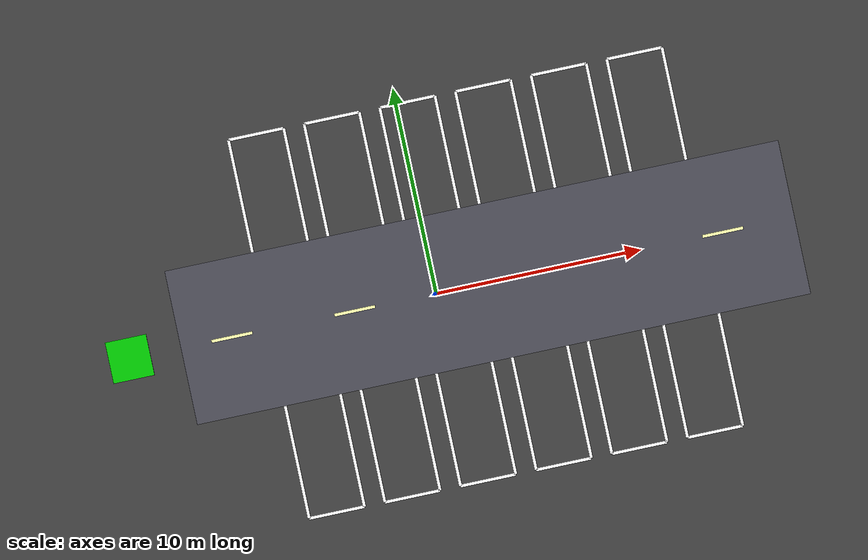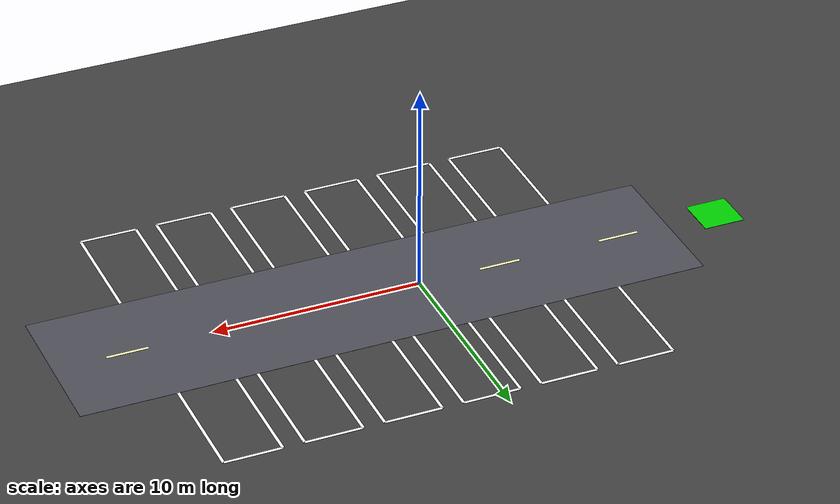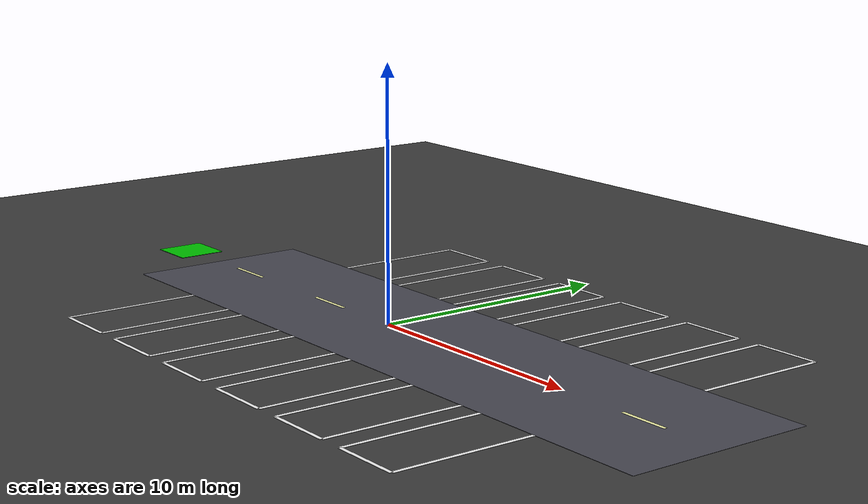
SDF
<?xml version="1.0" ?>
<sdf version="1.6">
  <world name="parking_lot_realistic">

    <!-- Sun / lighting -->
    <include>
      <uri>model://sun</uri>
    </include>

    <!-- Physics -->
    <physics type="ode">
      <real_time_update_rate>1000</real_time_update_rate>
      <max_step_size>0.001</max_step_size>
    </physics>

    <!-- Ground (asphalt) -->
    <model name="ground_plane">
      <static>true</static>
      <link name="link">
        <collision name="collision">
          <geometry>
            <plane>
              <normal>0 0 1</normal>
              <size>50 50</size>
            </plane>
          </geometry>
        </collision>
        <visual name="visual">
          <geometry>
            <plane>
              <normal>0 0 1</normal>
              <size>50 50</size>
            </plane>
          </geometry>
          <material>
            <ambient>0.25 0.25 0.25 1</ambient>
            <diffuse>0.25 0.25 0.25 1</diffuse>
          </material>
        </visual>
      </link>
    </model>

    <!-- Entrance marker (green box) -->
    <model name="entrance_marker">
      <static>true</static>
      <link name="link">
        <visual name="entrance_visual">
          <pose>-15 0 0 0 0 0</pose>
          <geometry><box><size>2 2 0.02</size></box></geometry>
          <material><diffuse>0 0.8 0 1</diffuse></material>
        </visual>
      </link>
    </model>

    <!-- Central road (horizontal) - 7.5m wide for comfortable two-way traffic -->
    <model name="main_lane">
      <static>true</static>
      <link name="link">
        <visual name="lane_surface">
          <pose>2.5 0 0.001 0 0 0</pose>
          <geometry><box><size>30 7.5 0.01</size></box></geometry>
          <material>
            <ambient>0.20 0.20 0.22 1</ambient>
            <diffuse>0.30 0.30 0.34 1</diffuse>
          </material>
        </visual>

        <!-- Center dashed lines -->
        <visual name="dash1"><pose>-10 0 0.002 0 0 0</pose>
          <geometry><box><size>2 0.15 0.01</size></box></geometry>
          <material><diffuse>1 1 0.7 1</diffuse></material>
        </visual>
        <visual name="dash2"><pose>-4 0 0.002 0 0 0</pose>
          <geometry><box><size>2 0.15 0.01</size></box></geometry>
          <material><diffuse>1 1 0.7 1</diffuse></material>
        </visual>
        <visual name="dash3"><pose>2 0 0.002 0 0 0</pose>
          <geometry><box><size>2 0.15 0.01</size></box></geometry>
          <material><diffuse>1 1 0.7 1</diffuse></material>
        </visual>
        <visual name="dash4"><pose>8 0 0.002 0 0 0</pose>
          <geometry><box><size>2 0.15 0.01</size></box></geometry>
          <material><diffuse>1 1 0.7 1</diffuse></material>
        </visual>
        <visual name="dash5"><pose>14 0 0.002 0 0 0</pose>
          <geometry><box><size>2 0.15 0.01</size></box></geometry>
          <material><diffuse>1 1 0.7 1</diffuse></material>
        </visual>
      </link>
    </model>

    <!-- Parking bays - REALISTIC DIMENSIONS -->
    <!-- Bay size: 2.7m wide × 5.5m deep -->
    <!-- Road: 7.5m wide -->
    <!-- Top row front edge at y = 3.75 (half road = 3.75) -->
    <!-- Top row back edge at y = 9.25 (3.75 + 5.5) -->
    <!-- Bottom row front edge at y = -3.75 -->
    <!-- Bottom row back edge at y = -9.25 -->

    <model name="parking_bays">
      <static>true</static>
      <link name="link">

        <!-- ===== Top row (A1..A6) ===== -->
        <!-- Bay dimensions: 2.7m wide × 5.5m deep -->

        <!-- A1: centered at x=-6.85 -->
        <visual name="A1_back"><pose>-6.85 9.25 0.002 0 0 0</pose>
          <geometry><box><size>2.7 0.15 0.01</size></box></geometry>
          <material><diffuse>1 1 1 1</diffuse></material>
        </visual>
        <visual name="A1_left"><pose>-8.2 6.5 0.002 0 0 0</pose>
          <geometry><box><size>0.15 5.5 0.01</size></box></geometry>
          <material><diffuse>1 1 1 1</diffuse></material>
        </visual>
        <visual name="A1_right"><pose>-5.5 6.5 0.002 0 0 0</pose>
          <geometry><box><size>0.15 5.5 0.01</size></box></geometry>
          <material><diffuse>1 1 1 1</diffuse></material>
        </visual>

        <!-- A2: centered at x=-3.15 -->
        <visual name="A2_back"><pose>-3.15 9.25 0.002 0 0 0</pose>
          <geometry><box><size>2.7 0.15 0.01</size></box></geometry>
          <material><diffuse>1 1 1 1</diffuse></material>
        </visual>
        <visual name="A2_left"><pose>-4.5 6.5 0.002 0 0 0</pose>
          <geometry><box><size>0.15 5.5 0.01</size></box></geometry>
          <material><diffuse>1 1 1 1</diffuse></material>
        </visual>
        <visual name="A2_right"><pose>-1.8 6.5 0.002 0 0 0</pose>
          <geometry><box><size>0.15 5.5 0.01</size></box></geometry>
          <material><diffuse>1 1 1 1</diffuse></material>
        </visual>

        <!-- A3: centered at x=0.55 -->
        <visual name="A3_back"><pose>0.55 9.25 0.002 0 0 0</pose>
          <geometry><box><size>2.7 0.15 0.01</size></box></geometry>
          <material><diffuse>1 1 1 1</diffuse></material>
        </visual>
        <visual name="A3_left"><pose>-0.8 6.5 0.002 0 0 0</pose>
          <geometry><box><size>0.15 5.5 0.01</size></box></geometry>
          <material><diffuse>1 1 1 1</diffuse></material>
        </visual>
        <visual name="A3_right"><pose>1.9 6.5 0.002 0 0 0</pose>
          <geometry><box><size>0.15 5.5 0.01</size></box></geometry>
          <material><diffuse>1 1 1 1</diffuse></material>
        </visual>

        <!-- A4: centered at x=4.25 -->
        <visual name="A4_back"><pose>4.25 9.25 0.002 0 0 0</pose>
          <geometry><box><size>2.7 0.15 0.01</size></box></geometry>
          <material><diffuse>1 1 1 1</diffuse></material>
        </visual>
        <visual name="A4_left"><pose>2.9 6.5 0.002 0 0 0</pose>
          <geometry><box><size>0.15 5.5 0.01</size></box></geometry>
          <material><diffuse>1 1 1 1</diffuse></material>
        </visual>
        <visual name="A4_right"><pose>5.6 6.5 0.002 0 0 0</pose>
          <geometry><box><size>0.15 5.5 0.01</size></box></geometry>
          <material><diffuse>1 1 1 1</diffuse></material>
        </visual>

        <!-- A5: centered at x=7.95 -->
        <visual name="A5_back"><pose>7.95 9.25 0.002 0 0 0</pose>
          <geometry><box><size>2.7 0.15 0.01</size></box></geometry>
          <material><diffuse>1 1 1 1</diffuse></material>
        </visual>
        <visual name="A5_left"><pose>6.6 6.5 0.002 0 0 0</pose>
          <geometry><box><size>0.15 5.5 0.01</size></box></geometry>
          <material><diffuse>1 1 1 1</diffuse></material>
        </visual>
        <visual name="A5_right"><pose>9.3 6.5 0.002 0 0 0</pose>
          <geometry><box><size>0.15 5.5 0.01</size></box></geometry>
          <material><diffuse>1 1 1 1</diffuse></material>
        </visual>

        <!-- A6: centered at x=11.65 -->
        <visual name="A6_back"><pose>11.65 9.25 0.002 0 0 0</pose>
          <geometry><box><size>2.7 0.15 0.01</size></box></geometry>
          <material><diffuse>1 1 1 1</diffuse></material>
        </visual>
        <visual name="A6_left"><pose>10.3 6.5 0.002 0 0 0</pose>
          <geometry><box><size>0.15 5.5 0.01</size></box></geometry>
          <material><diffuse>1 1 1 1</diffuse></material>
        </visual>
        <visual name="A6_right"><pose>13 6.5 0.002 0 0 0</pose>
          <geometry><box><size>0.15 5.5 0.01</size></box></geometry>
          <material><diffuse>1 1 1 1</diffuse></material>
        </visual>

        <!-- ===== Bottom row (B1..B6) ===== -->

        <!-- B1: centered at x=-6.85 -->
        <visual name="B1_back"><pose>-6.85 -9.25 0.002 0 0 0</pose>
          <geometry><box><size>2.7 0.15 0.01</size></box></geometry>
          <material><diffuse>1 1 1 1</diffuse></material>
        </visual>
        <visual name="B1_left"><pose>-8.2 -6.5 0.002 0 0 0</pose>
          <geometry><box><size>0.15 5.5 0.01</size></box></geometry>
          <material><diffuse>1 1 1 1</diffuse></material>
        </visual>
        <visual name="B1_right"><pose>-5.5 -6.5 0.002 0 0 0</pose>
          <geometry><box><size>0.15 5.5 0.01</size></box></geometry>
          <material><diffuse>1 1 1 1</diffuse></material>
        </visual>

        <!-- B2: centered at x=-3.15 -->
        <visual name="B2_back"><pose>-3.15 -9.25 0.002 0 0 0</pose>
          <geometry><box><size>2.7 0.15 0.01</size></box></geometry>
          <material><diffuse>1 1 1 1</diffuse></material>
        </visual>
        <visual name="B2_left"><pose>-4.5 -6.5 0.002 0 0 0</pose>
          <geometry><box><size>0.15 5.5 0.01</size></box></geometry>
          <material><diffuse>1 1 1 1</diffuse></material>
        </visual>
        <visual name="B2_right"><pose>-1.8 -6.5 0.002 0 0 0</pose>
          <geometry><box><size>0.15 5.5 0.01</size></box></geometry>
          <material><diffuse>1 1 1 1</diffuse></material>
        </visual>

        <!-- B3: centered at x=0.55 -->
        <visual name="B3_back"><pose>0.55 -9.25 0.002 0 0 0</pose>
          <geometry><box><size>2.7 0.15 0.01</size></box></geometry>
          <material><diffuse>1 1 1 1</diffuse></material>
        </visual>
        <visual name="B3_left"><pose>-0.8 -6.5 0.002 0 0 0</pose>
          <geometry><box><size>0.15 5.5 0.01</size></box></geometry>
          <material><diffuse>1 1 1 1</diffuse></material>
        </visual>
        <visual name="B3_right"><pose>1.9 -6.5 0.002 0 0 0</pose>
          <geometry><box><size>0.15 5.5 0.01</size></box></geometry>
          <material><diffuse>1 1 1 1</diffuse></material>
        </visual>

        <!-- B4: centered at x=4.25 -->
        <visual name="B4_back"><pose>4.25 -9.25 0.002 0 0 0</pose>
          <geometry><box><size>2.7 0.15 0.01</size></box></geometry>
          <material><diffuse>1 1 1 1</diffuse></material>
        </visual>
        <visual name="B4_left"><pose>2.9 -6.5 0.002 0 0 0</pose>
          <geometry><box><size>0.15 5.5 0.01</size></box></geometry>
          <material><diffuse>1 1 1 1</diffuse></material>
        </visual>
        <visual name="B4_right"><pose>5.6 -6.5 0.002 0 0 0</pose>
          <geometry><box><size>0.15 5.5 0.01</size></box></geometry>
          <material><diffuse>1 1 1 1</diffuse></material>
        </visual>

        <!-- B5: centered at x=7.95 -->
        <visual name="B5_back"><pose>7.95 -9.25 0.002 0 0 0</pose>
          <geometry><box><size>2.7 0.15 0.01</size></box></geometry>
          <material><diffuse>1 1 1 1</diffuse></material>
        </visual>
        <visual name="B5_left"><pose>6.6 -6.5 0.002 0 0 0</pose>
          <geometry><box><size>0.15 5.5 0.01</size></box></geometry>
          <material><diffuse>1 1 1 1</diffuse></material>
        </visual>
        <visual name="B5_right"><pose>9.3 -6.5 0.002 0 0 0</pose>
          <geometry><box><size>0.15 5.5 0.01</size></box></geometry>
          <material><diffuse>1 1 1 1</diffuse></material>
        </visual>

        <!-- B6: centered at x=11.65 -->
        <visual name="B6_back"><pose>11.65 -9.25 0.002 0 0 0</pose>
          <geometry><box><size>2.7 0.15 0.01</size></box></geometry>
          <material><diffuse>1 1 1 1</diffuse></material>
        </visual>
        <visual name="B6_left"><pose>10.3 -6.5 0.002 0 0 0</pose>
          <geometry><box><size>0.15 5.5 0.01</size></box></geometry>
          <material><diffuse>1 1 1 1</diffuse></material>
        </visual>
        <visual name="B6_right"><pose>13 -6.5 0.002 0 0 0</pose>
          <geometry><box><size>0.15 5.5 0.01</size></box></geometry>
          <material><diffuse>1 1 1 1</diffuse></material>
        </visual>

      </link>
    </model>

  </world>
</sdf>
